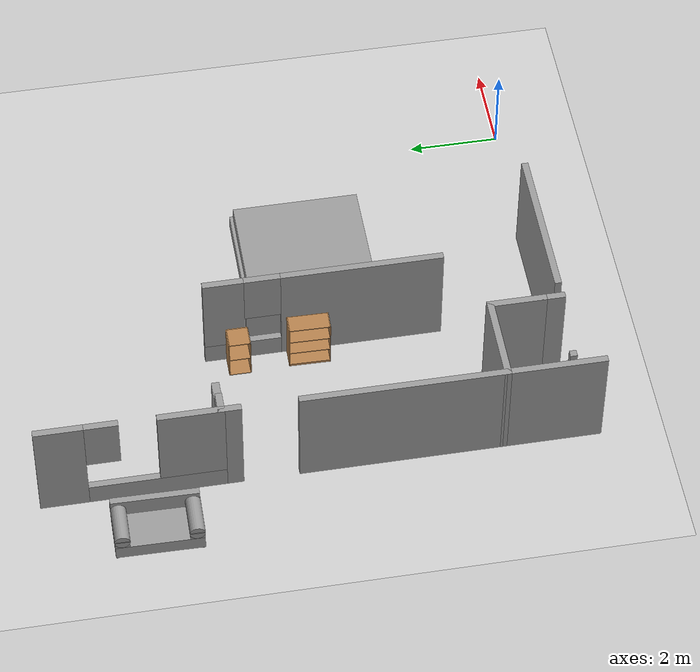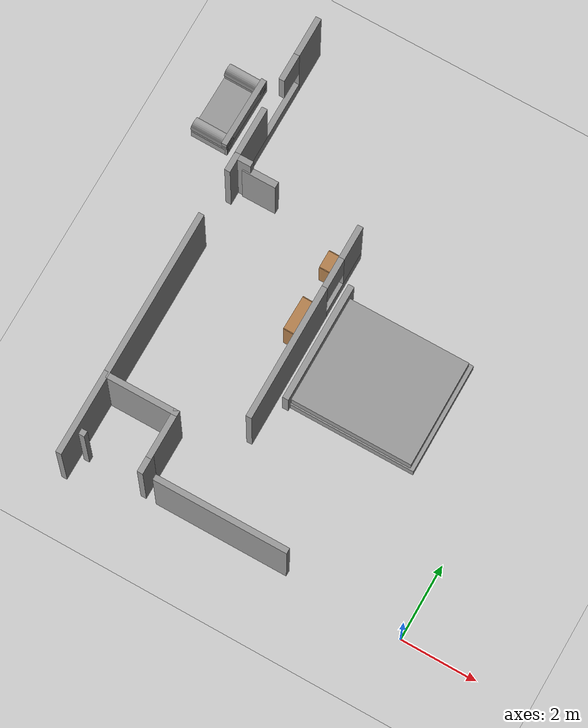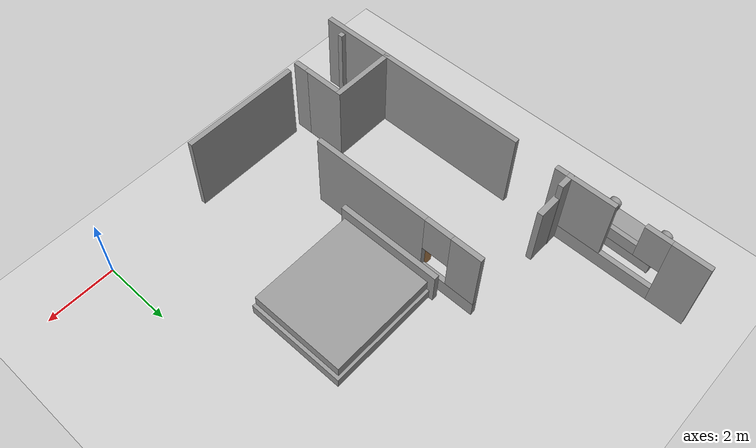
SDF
<sdf version="1.6">
 <world name="default">
  <model name="ground_plane">
   <static>1</static>
   <link name="link">
    <collision name="collision">
     <geometry><plane><normal>0 0 1</normal><size>100 100</size></plane></geometry>
     <surface>
      <contact><collide_bitmask>65535</collide_bitmask></contact>
      <friction><ode><mu>100</mu><mu2>50</mu2></ode></friction>
     </surface>
    </collision>
    <visual name="visual">
     <cast_shadows>0</cast_shadows>
     <geometry><plane><normal>0 0 1</normal><size>100 100</size></plane></geometry>
     <material>
      <script><uri>file://media/materials/scripts/gazebo.material</uri><name>Gazebo/Grey</name></script>
     </material>
    </visual>
   </link>
  </model>
  <model name="spruce1st">
   <pose>-3.08285 0.81707 0 0 -0 0</pose>
   <link name="Door_0">
    <collision name="Door_0_Collision">
     <geometry><box><size>0.9 0.17 2</size></box></geometry>
     <pose>0 0 1 0 -0 0</pose>
    </collision>
    <visual name="Door_0_Visual">
     <pose>0 0 1 0 -0 0</pose>
     <geometry><box><size>0.9 0.17 2</size></box></geometry>
     <material>
      <script><uri>file://media/materials/scripts/gazebo.material</uri><name>Gazebo/Grey</name></script>
     </material>
    </visual>
    <pose>-4.99432 6.83024 0 0 -0 0</pose>
   </link>
   <link name="Wall_112">
    <collision name="Wall_112_Collision">
     <geometry><box><size>3.5 0.15 2.5</size></box></geometry>
     <pose>0 0 1.25 0 -0 0</pose>
    </collision>
    <visual name="Wall_112_Visual">
     <pose>0 0 1.25 0 -0 0</pose>
     <geometry><box><size>3.5 0.15 2.5</size></box></geometry>
     <material>
      <script><uri>file://media/materials/scripts/gazebo.material</uri><name>Gazebo/Grey</name></script>
      <ambient>1 1 1 1</ambient>
     </material>
     <meta><layer>0</layer></meta>
    </visual>
    <pose>-1.7137 -0.745301 0 0 -0 3.14159</pose>
   </link>
   <link name="Wall_14">
    <pose>-5.6471 8.7763 0 0 0 -1.5708</pose>
    <visual name="Wall_14_Visual_0">
     <pose>-1.47334 0 1.25 0 -0 0</pose>
     <geometry><box><size>1.05332 0.15 2.5</size></box></geometry>
     <material>
      <script><uri>file://media/materials/scripts/gazebo.material</uri><name>Gazebo/Grey</name></script>
      <ambient>1 1 1 1</ambient>
     </material>
     <meta><layer>0</layer></meta>
    </visual>
    <collision name="Wall_14_Collision_0">
     <geometry><box><size>1.05332 0.15 2.5</size></box></geometry>
     <pose>-1.47334 0 1.25 0 -0 0</pose>
    </collision>
    <visual name="Wall_14_Visual_1">
     <pose>0.526659 0 0.25 0 -0 0</pose>
     <geometry><box><size>2.94668 0.15 0.5</size></box></geometry>
     <material>
      <script><uri>file://media/materials/scripts/gazebo.material</uri><name>Gazebo/Grey</name></script>
      <ambient>1 1 1 1</ambient>
     </material>
     <meta><layer>0</layer></meta>
    </visual>
    <collision name="Wall_14_Collision_1">
     <geometry><box><size>2.94668 0.15 0.5</size></box></geometry>
     <pose>0.526659 0 0.25 0 -0 0</pose>
    </collision>
    <visual name="Wall_14_Visual_2">
     <pose>1.28976 0 1.5 0 -0 0</pose>
     <geometry><box><size>1.42048 0.15 2</size></box></geometry>
     <material>
      <script><uri>file://media/materials/scripts/gazebo.material</uri><name>Gazebo/Grey</name></script>
      <ambient>1 1 1 1</ambient>
     </material>
     <meta><layer>0</layer></meta>
    </visual>
    <collision name="Wall_14_Collision_2">
     <geometry><box><size>1.42048 0.15 2</size></box></geometry>
     <pose>1.28976 0 1.5 0 -0 0</pose>
    </collision>
    <visual name="Wall_14_Visual_3">
     <pose>-0.58358 0 1.9 0 -0 0</pose>
     <geometry><box><size>0.726205 0.15 1.2</size></box></geometry>
     <material>
      <script><uri>file://media/materials/scripts/gazebo.material</uri><name>Gazebo/Grey</name></script>
      <ambient>1 1 1 1</ambient>
     </material>
     <meta><layer>0</layer></meta>
    </visual>
    <collision name="Wall_14_Collision_3">
     <geometry><box><size>0.726205 0.15 1.2</size></box></geometry>
     <pose>-0.58358 0 1.9 0 -0 0</pose>
    </collision>
   </link>
   <link name="Wall_15">
    <collision name="Wall_15_Collision">
     <geometry><box><size>0.5 0.15 2.5</size></box></geometry>
     <pose>0 0 1.25 0 -0 0</pose>
    </collision>
    <visual name="Wall_15_Visual">
     <pose>0 0 1.25 0 -0 0</pose>
     <geometry><box><size>0.5 0.15 2.5</size></box></geometry>
     <material>
      <script><uri>file://media/materials/scripts/gazebo.material</uri><name>Gazebo/Grey</name></script>
      <ambient>1 1 1 1</ambient>
     </material>
     <meta><layer>0</layer></meta>
    </visual>
    <pose>-5.4721 6.8513 0 0 -0 0</pose>
   </link>
   <link name="Wall_17">
    <collision name="Wall_17_Collision">
     <geometry><box><size>0.5 0.15 2.5</size></box></geometry>
     <pose>0 0 1.25 0 -0 0</pose>
    </collision>
    <visual name="Wall_17_Visual">
     <pose>0 0 1.25 0 -0 0</pose>
     <geometry><box><size>0.5 0.15 2.5</size></box></geometry>
     <material>
      <script><uri>file://media/materials/scripts/gazebo.material</uri><name>Gazebo/Grey</name></script>
      <ambient>1 1 1 1</ambient>
     </material>
     <meta><layer>0</layer></meta>
    </visual>
    <pose>-5.6471 6.6763 0 0 0 -1.5708</pose>
   </link>
   <link name="Wall_20">
    <collision name="Wall_20_Collision">
     <geometry><box><size>4.5 0.15 2.5</size></box></geometry>
     <pose>0 0 1.25 0 -0 0</pose>
    </collision>
    <visual name="Wall_20_Visual">
     <pose>0 0 1.25 0 -0 0</pose>
     <geometry><box><size>4.5 0.15 2.5</size></box></geometry>
     <material>
      <script><uri>file://media/materials/scripts/gazebo.material</uri><name>Gazebo/Grey</name></script>
      <ambient>1 1 1 1</ambient>
     </material>
     <meta><layer>0</layer></meta>
    </visual>
    <pose>-5.6471 2.9763 0 0 0 -1.5708</pose>
   </link>
   <link name="Wall_22">
    <collision name="Wall_22_Collision">
     <geometry><box><size>2 0.15 2.5</size></box></geometry>
     <pose>0 0 1.25 0 -0 0</pose>
    </collision>
    <visual name="Wall_22_Visual">
     <pose>0 0 1.25 0 -0 0</pose>
     <geometry><box><size>2 0.15 2.5</size></box></geometry>
     <material>
      <script><uri>file://media/materials/scripts/gazebo.material</uri><name>Gazebo/Grey</name></script>
      <ambient>1 1 1 1</ambient>
     </material>
     <meta><layer>0</layer></meta>
    </visual>
    <pose>-4.7221 0.801304 0 0 -0 0</pose>
   </link>
   <link name="Wall_23">
    <collision name="Wall_23_Collision">
     <geometry><box><size>1.30061 0.15 2.5</size></box></geometry>
     <pose>0 0 1.25 0 -0 0</pose>
    </collision>
    <visual name="Wall_23_Visual">
     <pose>0 0 1.25 0 -0 0</pose>
     <geometry><box><size>1.30061 0.15 2.5</size></box></geometry>
     <material>
      <script><uri>file://media/materials/scripts/gazebo.material</uri><name>Gazebo/Grey</name></script>
      <ambient>1 1 1 1</ambient>
     </material>
     <meta><layer>0</layer></meta>
    </visual>
    <pose>-3.7971 0.225996 0 0 0 -1.5708</pose>
   </link>
   <link name="Wall_24">
    <collision name="Wall_24_Collision">
     <geometry><box><size>0.5 0.15 2.5</size></box></geometry>
     <pose>0 0 1.25 0 -0 0</pose>
    </collision>
    <visual name="Wall_24_Visual">
     <pose>0 0 1.25 0 -0 0</pose>
     <geometry><box><size>0.5 0.15 2.5</size></box></geometry>
     <material>
      <script><uri>file://media/materials/scripts/gazebo.material</uri><name>Gazebo/Grey</name></script>
      <ambient>1 1 1 1</ambient>
     </material>
     <meta><layer>0</layer></meta>
    </visual>
    <pose>-3.7971 -0.574925 0 0 0 -1.5708</pose>
   </link>
   <link name="Wall_26">
    <collision name="Wall_26_Collision">
     <geometry><box><size>0.15 0.15 2.5</size></box></geometry>
     <pose>0 0 1.25 0 -0 0</pose>
    </collision>
    <visual name="Wall_26_Visual">
     <pose>0 0 1.25 0 -0 0</pose>
     <geometry><box><size>0.15 0.15 2.5</size></box></geometry>
     <material>
      <script><uri>file://media/materials/scripts/gazebo.material</uri><name>Gazebo/Grey</name></script>
      <ambient>1 1 1 1</ambient>
     </material>
     <meta><layer>0</layer></meta>
    </visual>
    <pose>-5.3971 -0.648696 0 0 -0 0</pose>
   </link>
   <link name="Wall_27">
    <collision name="Wall_27_Collision">
     <geometry><box><size>0.15 0.15 2.5</size></box></geometry>
     <pose>0 0 1.25 0 -0 0</pose>
    </collision>
    <visual name="Wall_27_Visual">
     <pose>0 0 1.25 0 -0 0</pose>
     <geometry><box><size>0.15 0.15 2.5</size></box></geometry>
     <material>
      <script><uri>file://media/materials/scripts/gazebo.material</uri><name>Gazebo/Grey</name></script>
      <ambient>1 1 1 1</ambient>
     </material>
     <meta><layer>0</layer></meta>
    </visual>
    <pose>-5.3971 -0.648696 0 0 -0 0</pose>
   </link>
   <link name="Wall_32">
    <collision name="Wall_32_Collision">
     <geometry><box><size>2.2153 0.15 2.5</size></box></geometry>
     <pose>0 0 1.25 0 -0 0</pose>
    </collision>
    <visual name="Wall_32_Visual">
     <pose>0 0 1.25 0 -0 0</pose>
     <geometry><box><size>2.2153 0.15 2.5</size></box></geometry>
     <material>
      <script><uri>file://media/materials/scripts/gazebo.material</uri><name>Gazebo/Grey</name></script>
      <ambient>1 1 1 1</ambient>
     </material>
     <meta><layer>0</layer></meta>
    </visual>
    <pose>-5.64642 -0.231348 0 0 -0 1.57145</pose>
   </link>
   <link name="Wall_63">
    <pose>-2.2887 4.1547 0 0 -0 1.5708</pose>
    <visual name="Wall_63_Visual_0">
     <pose>-0.8467 0 1.25 0 -0 0</pose>
     <geometry><box><size>3.5566 0.15 2.5</size></box></geometry>
     <material>
      <script><uri>file://media/materials/scripts/gazebo.material</uri><name>Gazebo/Grey</name></script>
      <ambient>1 1 1 1</ambient>
     </material>
     <meta><layer>0</layer></meta>
    </visual>
    <collision name="Wall_63_Collision_0">
     <geometry><box><size>3.5566 0.15 2.5</size></box></geometry>
     <pose>-0.8467 0 1.25 0 -0 0</pose>
    </collision>
    <visual name="Wall_63_Visual_1">
     <pose>1.7783 0 0.25 0 -0 0</pose>
     <geometry><box><size>1.6934 0.15 0.5</size></box></geometry>
     <material>
      <script><uri>file://media/materials/scripts/gazebo.material</uri><name>Gazebo/Grey</name></script>
      <ambient>1 1 1 1</ambient>
     </material>
     <meta><layer>0</layer></meta>
    </visual>
    <collision name="Wall_63_Collision_1">
     <geometry><box><size>1.6934 0.15 0.5</size></box></geometry>
     <pose>1.7783 0 0.25 0 -0 0</pose>
    </collision>
    <visual name="Wall_63_Visual_2">
     <pose>2.1783 0 1.5 0 -0 0</pose>
     <geometry><box><size>0.8934 0.15 2</size></box></geometry>
     <material>
      <script><uri>file://media/materials/scripts/gazebo.material</uri><name>Gazebo/Grey</name></script>
      <ambient>1 1 1 1</ambient>
     </material>
     <meta><layer>0</layer></meta>
    </visual>
    <collision name="Wall_63_Collision_2">
     <geometry><box><size>0.8934 0.15 2</size></box></geometry>
     <pose>2.1783 0 1.5 0 -0 0</pose>
    </collision>
    <visual name="Wall_63_Visual_3">
     <pose>1.3316 0 1.9 0 -0 0</pose>
     <geometry><box><size>0.8 0.15 1.2</size></box></geometry>
     <material>
      <script><uri>file://media/materials/scripts/gazebo.material</uri><name>Gazebo/Grey</name></script>
      <ambient>1 1 1 1</ambient>
     </material>
     <meta><layer>0</layer></meta>
    </visual>
    <collision name="Wall_63_Collision_3">
     <geometry><box><size>0.8 0.15 1.2</size></box></geometry>
     <pose>1.3316 0 1.9 0 -0 0</pose>
    </collision>
   </link>
   <static>1</static>
  </model>
  <model name="bedtry1">
   <link name="link_1">
    <pose>-1.11426 0.018994 0.114995 0 -0 0</pose>
    <inertial>
     <mass>0.506131</mass>
     <inertia>
      <ixx>0.462337</ixx>
      <ixy>0</ixy>
      <ixz>0</ixz>
      <iyy>0.0441055</iyy>
      <iyz>0</iyz>
      <izz>0.420361</izz>
     </inertia>
    </inertial>
    <visual name="visual">
     <geometry><box><size>0.158906 3.15297 1.01018</size></box></geometry>
     <material>
      <lighting>1</lighting>
      <script><uri>file://media/materials/scripts/gazebo.material</uri><name>Gazebo/Grey</name></script>
      <shader type="pixel"><normal_map>__default__</normal_map></shader>
      <ambient>0.3 0.3 0.3 1</ambient>
      <diffuse>0.7 0.7 0.7 1</diffuse>
      <specular>0.01 0.01 0.01 1</specular>
      <emissive>0 0 0 1</emissive>
     </material>
    </visual>
    <collision name="collision">
     <geometry><box><size>0.158906 3.15297 1.01018</size></box></geometry>
     <surface>
      <friction>
       <ode><mu>1</mu><mu2>1</mu2><fdir1>0 0 0</fdir1><slip1>0</slip1><slip2>0</slip2></ode>
       <torsional>
        <coefficient>1</coefficient>
        <patch_radius>0</patch_radius>
        <surface_radius>0</surface_radius>
        <use_patch_radius>1</use_patch_radius>
        <ode><slip>0</slip></ode>
       </torsional>
      </friction>
      <bounce><restitution_coefficient>0</restitution_coefficient><threshold>1e+06</threshold></bounce>
      <contact>
       <collide_without_contact>0</collide_without_contact>
       <collide_without_contact_bitmask>1</collide_without_contact_bitmask>
       <collide_bitmask>1</collide_bitmask>
       <ode>
        <soft_cfm>0</soft_cfm>
        <soft_erp>0.2</soft_erp>
        <kp>1e+13</kp>
        <kd>1</kd>
        <max_vel>0.01</max_vel>
        <min_depth>0</min_depth>
       </ode>
       <bullet>
        <split_impulse>1</split_impulse>
        <split_impulse_penetration_threshold>-0.01</split_impulse_penetration_threshold>
        <soft_cfm>0</soft_cfm>
        <soft_erp>0.2</soft_erp>
        <kp>1e+13</kp>
        <kd>1</kd>
       </bullet>
      </contact>
     </surface>
    </collision>
   </link>
   <link name="link_2">
    <pose>0.540571 0.000416 -0.229697 0 -0 0</pose>
    <inertial>
     <mass>3.41387</mass>
     <inertia><ixx>2.48377</ixx><ixy>0</ixy><ixz>0</ixz><iyy>3.45159</iyy><iyz>0</iyz><izz>5.87135</izz></inertia>
    </inertial>
    <visual name="visual">
     <geometry><box><size>3.46699 2.93567 0.335414</size></box></geometry>
     <material>
      <lighting>1</lighting>
      <script><uri>file://media/materials/scripts/gazebo.material</uri><name>Gazebo/Grey</name></script>
      <shader type="pixel"><normal_map>__default__</normal_map></shader>
      <ambient>0.3 0.3 0.3 1</ambient>
      <diffuse>0.7 0.7 0.7 1</diffuse>
      <specular>0.01 0.01 0.01 1</specular>
      <emissive>0 0 0 1</emissive>
     </material>
    </visual>
    <collision name="collision">
     <geometry><box><size>3.46699 2.93567 0.335414</size></box></geometry>
     <surface>
      <friction>
       <ode><mu>1</mu><mu2>1</mu2><fdir1>0 0 0</fdir1><slip1>0</slip1><slip2>0</slip2></ode>
       <torsional>
        <coefficient>1</coefficient>
        <patch_radius>0</patch_radius>
        <surface_radius>0</surface_radius>
        <use_patch_radius>1</use_patch_radius>
        <ode><slip>0</slip></ode>
       </torsional>
      </friction>
      <bounce><restitution_coefficient>0</restitution_coefficient><threshold>1e+06</threshold></bounce>
      <contact>
       <collide_without_contact>0</collide_without_contact>
       <collide_without_contact_bitmask>1</collide_without_contact_bitmask>
       <collide_bitmask>1</collide_bitmask>
       <ode>
        <soft_cfm>0</soft_cfm>
        <soft_erp>0.2</soft_erp>
        <kp>1e+13</kp>
        <kd>1</kd>
        <max_vel>0.01</max_vel>
        <min_depth>0</min_depth>
       </ode>
       <bullet>
        <split_impulse>1</split_impulse>
        <split_impulse_penetration_threshold>-0.01</split_impulse_penetration_threshold>
        <soft_cfm>0</soft_cfm>
        <soft_erp>0.2</soft_erp>
        <kp>1e+13</kp>
        <kd>1</kd>
       </bullet>
      </contact>
     </surface>
    </collision>
   </link>
   <link name="link_3">
    <pose>0.573695 -0.01941 0.114702 0 -0 0</pose>
    <inertial>
     <mass>3.04536</mass>
     <inertia><ixx>2.05172</ixx><ixy>0</ixy><ixz>0</ixz><iyy>2.63138</iyy><iyz>0</iyz><izz>4.62552</izz></inertia>
    </inertial>
    <visual name="visual">
     <geometry><box><size>3.20239 2.82333 0.336824</size></box></geometry>
     <material>
      <lighting>1</lighting>
      <script><uri>file://media/materials/scripts/gazebo.material</uri><name>Gazebo/Grey</name></script>
      <shader type="pixel"/>
      <ambient>0.3 0.3 0.3 1</ambient>
      <diffuse>0.7 0.7 0.7 1</diffuse>
      <specular>0.01 0.01 0.01 1</specular>
      <emissive>0 0 0 1</emissive>
     </material>
    </visual>
    <collision name="collision">
     <geometry><box><size>3.20239 2.82333 0.336824</size></box></geometry>
     <surface>
      <friction>
       <ode><mu>1</mu><mu2>1</mu2><fdir1>0 0 0</fdir1><slip1>0</slip1><slip2>0</slip2></ode>
       <torsional>
        <coefficient>1</coefficient>
        <patch_radius>0</patch_radius>
        <surface_radius>0</surface_radius>
        <use_patch_radius>1</use_patch_radius>
        <ode><slip>0</slip></ode>
       </torsional>
      </friction>
      <bounce><restitution_coefficient>0</restitution_coefficient><threshold>1e+06</threshold></bounce>
      <contact>
       <collide_without_contact>0</collide_without_contact>
       <collide_without_contact_bitmask>1</collide_without_contact_bitmask>
       <collide_bitmask>1</collide_bitmask>
       <ode>
        <soft_cfm>0</soft_cfm>
        <soft_erp>0.2</soft_erp>
        <kp>1e+13</kp>
        <kd>1</kd>
        <max_vel>0.01</max_vel>
        <min_depth>0</min_depth>
       </ode>
       <bullet>
        <split_impulse>1</split_impulse>
        <split_impulse_penetration_threshold>-0.01</split_impulse_penetration_threshold>
        <soft_cfm>0</soft_cfm>
        <soft_erp>0.2</soft_erp>
        <kp>1e+13</kp>
        <kd>1</kd>
       </bullet>
      </contact>
     </surface>
    </collision>
   </link>
   <joint name="link_1_JOINT_2" type="fixed">
    <parent>link_1</parent>
    <child>link_3</child>
    <physics>
     <ode><limit><cfm>0</cfm><erp>0.2</erp></limit><suspension><cfm>0</cfm><erp>0.2</erp></suspension></ode>
    </physics>
   </joint>
   <joint name="link_2_JOINT_0" type="fixed">
    <parent>link_2</parent>
    <child>link_1</child>
    <physics>
     <ode><limit><cfm>0</cfm><erp>0.2</erp></limit><suspension><cfm>0</cfm><erp>0.2</erp></suspension></ode>
    </physics>
   </joint>
   <joint name="link_3_JOINT_1" type="fixed">
    <parent>link_3</parent>
    <child>link_2</child>
    <physics>
     <ode><limit><cfm>0</cfm><erp>0.2</erp></limit><suspension><cfm>0</cfm><erp>0.2</erp></suspension></ode>
    </physics>
   </joint>
   <static>0</static>
   <pose>-3.92331 5.03308 0.397404 0 -0 0</pose>
  </model>
  <model name="cabinet">
   <static>1</static>
   <link name="cabinet_bottom_plate">
    <inertial>
     <pose>0 0 -1 0 -0 0</pose>
     <inertia><ixx>2.05</ixx><ixy>0</ixy><ixz>0</ixz><iyy>2.05</iyy><iyz>0</iyz><izz>2.05</izz></inertia>
     <mass>25</mass>
    </inertial>
    <collision name="cabinet_bottom_plate_geom">
     <pose>0 0 0.01 0 -0 0</pose>
     <geometry><box><size>0.45 0.45 0.02</size></box></geometry>
    </collision>
    <visual name="cabinet_bottom_plate_geom_visual">
     <pose>0 0 0.01 0 -0 0</pose>
     <geometry><box><size>0.45 0.45 0.02</size></box></geometry>
     <material>
      <script><uri>file://media/materials/scripts/gazebo.material</uri><name>Gazebo/Wood</name></script>
     </material>
    </visual>
    <collision name="cabinet_bottom_plate_geom_cabinet_back_plate">
     <pose>0.235 0 0.51 0 -0 0</pose>
     <geometry><box><size>0.02 0.45 1.02</size></box></geometry>
    </collision>
    <visual name="cabinet_bottom_plate_geom_cabinet_back_plate_visual">
     <pose>0.235 0 0.51 0 -0 0</pose>
     <geometry><box><size>0.02 0.45 1.02</size></box></geometry>
     <material>
      <script><uri>file://media/materials/scripts/gazebo.material</uri><name>Gazebo/Wood</name></script>
     </material>
    </visual>
    <collision name="cabinet_bottom_plate_geom_cabinet_left_plate">
     <pose>0 0.235 0.51 0 -0 0</pose>
     <geometry><box><size>0.45 0.02 1.02</size></box></geometry>
    </collision>
    <visual name="cabinet_bottom_plate_geom_cabinet_left_plate_visual">
     <pose>0 0.235 0.51 0 -0 0</pose>
     <geometry><box><size>0.45 0.02 1.02</size></box></geometry>
     <material>
      <script><uri>file://media/materials/scripts/gazebo.material</uri><name>Gazebo/Wood</name></script>
     </material>
    </visual>
    <collision name="cabinet_bottom_plate_geom_cabinet_middle_plate">
     <pose>0 0 0.51 0 -0 0</pose>
     <geometry><box><size>0.45 0.45 0.02</size></box></geometry>
    </collision>
    <visual name="cabinet_bottom_plate_geom_cabinet_middle_plate_visual">
     <pose>0 0 0.51 0 -0 0</pose>
     <geometry><box><size>0.45 0.45 0.02</size></box></geometry>
     <material>
      <script><uri>file://media/materials/scripts/gazebo.material</uri><name>Gazebo/Wood</name></script>
     </material>
    </visual>
    <collision name="cabinet_bottom_plate_geom_cabinet_right_plate">
     <pose>0 -0.235 0.51 0 -0 0</pose>
     <geometry><box><size>0.45 0.02 1.02</size></box></geometry>
    </collision>
    <visual name="cabinet_bottom_plate_geom_cabinet_right_plate_visual">
     <pose>0 -0.235 0.51 0 -0 0</pose>
     <geometry><box><size>0.45 0.02 1.02</size></box></geometry>
     <material>
      <script><uri>file://media/materials/scripts/gazebo.material</uri><name>Gazebo/Wood</name></script>
     </material>
    </visual>
    <collision name="cabinet_bottom_plate_geom_cabinet_top_plate">
     <pose>0 0 1.01 0 -0 0</pose>
     <geometry><box><size>0.45 0.45 0.02</size></box></geometry>
    </collision>
    <visual name="cabinet_bottom_plate_geom_cabinet_top_plate_visual">
     <pose>0 0 1.01 0 -0 0</pose>
     <geometry><box><size>0.45 0.45 0.02</size></box></geometry>
     <material>
      <script><uri>file://media/materials/scripts/gazebo.material</uri><name>Gazebo/Wood</name></script>
     </material>
    </visual>
   </link>
   <pose>-5.69297 6.88744 0 0 -0 0</pose>
  </model>
  <model name="bookshelf">
   <static>1</static>
   <link name="link">
    <inertial><mass>1</mass></inertial>
    <collision name="back">
     <pose>0 0.005 0.6 0 -0 0</pose>
     <geometry><box><size>0.9 0.01 1.2</size></box></geometry>
    </collision>
    <visual name="visual1">
     <pose>0 0.005 0.6 0 -0 0</pose>
     <geometry><box><size>0.9 0.01 1.2</size></box></geometry>
     <material>
      <script><uri>file://media/materials/scripts/gazebo.material</uri><name>Gazebo/Wood</name></script>
     </material>
    </visual>
    <collision name="left_side">
     <pose>0.45 -0.195 0.6 0 -0 0</pose>
     <geometry><box><size>0.02 0.4 1.2</size></box></geometry>
    </collision>
    <visual name="visual2">
     <pose>0.45 -0.195 0.6 0 -0 0</pose>
     <geometry><box><size>0.02 0.4 1.2</size></box></geometry>
     <material>
      <script><uri>file://media/materials/scripts/gazebo.material</uri><name>Gazebo/Wood</name></script>
     </material>
    </visual>
    <collision name="right_side">
     <pose>-0.45 -0.195 0.6 0 -0 0</pose>
     <geometry><box><size>0.02 0.4 1.2</size></box></geometry>
    </collision>
    <visual name="visual3">
     <pose>-0.45 -0.195 0.6 0 -0 0</pose>
     <geometry><box><size>0.02 0.4 1.2</size></box></geometry>
     <material>
      <script><uri>file://media/materials/scripts/gazebo.material</uri><name>Gazebo/Wood</name></script>
     </material>
    </visual>
    <collision name="bottom">
     <pose>0 -0.195 0.03 0 -0 0</pose>
     <geometry><box><size>0.88 0.4 0.06</size></box></geometry>
    </collision>
    <visual name="visual4">
     <pose>0 -0.195 0.03 0 -0 0</pose>
     <geometry><box><size>0.88 0.4 0.06</size></box></geometry>
     <material>
      <script><uri>file://media/materials/scripts/gazebo.material</uri><name>Gazebo/Wood</name></script>
     </material>
    </visual>
    <collision name="top">
     <pose>0 -0.195 1.19 0 -0 0</pose>
     <geometry><box><size>0.88 0.4 0.02</size></box></geometry>
    </collision>
    <visual name="visual5">
     <pose>0 -0.195 1.19 0 -0 0</pose>
     <geometry><box><size>0.88 0.4 0.02</size></box></geometry>
     <material>
      <script><uri>file://media/materials/scripts/gazebo.material</uri><name>Gazebo/Wood</name></script>
     </material>
    </visual>
    <collision name="low_shelf">
     <pose>0 -0.195 0.43 0 -0 0</pose>
     <geometry><box><size>0.88 0.4 0.02</size></box></geometry>
    </collision>
    <visual name="visual6">
     <pose>0 -0.195 0.43 0 -0 0</pose>
     <geometry><box><size>0.88 0.4 0.02</size></box></geometry>
     <material>
      <script><uri>file://media/materials/scripts/gazebo.material</uri><name>Gazebo/Wood</name></script>
     </material>
    </visual>
    <collision name="high_shelf">
     <pose>0 -0.195 0.8 0 -0 0</pose>
     <geometry><box><size>0.88 0.4 0.02</size></box></geometry>
    </collision>
    <visual name="visual7">
     <pose>0 -0.195 0.8 0 -0 0</pose>
     <geometry><box><size>0.88 0.4 0.02</size></box></geometry>
     <material>
      <script><uri>file://media/materials/scripts/gazebo.material</uri><name>Gazebo/Wood</name></script>
     </material>
    </visual>
   </link>
   <pose>-5.48843 5.33433 0 0 0 -1.58791</pose>
  </model>
  <model name="couch2.0_1">
   <link name="link_0">
    <pose>0 0.042624 -0.025032 0 -0 0</pose>
    <inertial>
     <mass>0.629351</mass>
     <inertia>
      <ixx>0.0582683</ixx>
      <ixy>0</ixy>
      <ixz>0</ixz>
      <iyy>0.192922</iyy>
      <iyz>0</iyz>
      <izz>0.239546</izz>
     </inertia>
    </inertial>
    <visual name="visual">
     <geometry><box><size>1.88878 1 0.33319</size></box></geometry>
     <material>
      <lighting>1</lighting>
      <script><uri>file://media/materials/scripts/gazebo.material</uri><name>Gazebo/Grey</name></script>
      <shader type="pixel"><normal_map>__default__</normal_map></shader>
      <ambient>0.3 0.3 0.3 1</ambient>
      <diffuse>0.7 0.7 0.7 1</diffuse>
      <specular>0.01 0.01 0.01 1</specular>
      <emissive>0 0 0 1</emissive>
     </material>
    </visual>
    <collision name="collision">
     <geometry><box><size>1.88878 1 0.33319</size></box></geometry>
     <surface>
      <friction>
       <ode><mu>1</mu><mu2>1</mu2><fdir1>0 0 0</fdir1><slip1>0</slip1><slip2>0</slip2></ode>
       <torsional>
        <coefficient>1</coefficient>
        <patch_radius>0</patch_radius>
        <surface_radius>0</surface_radius>
        <use_patch_radius>1</use_patch_radius>
        <ode><slip>0</slip></ode>
       </torsional>
      </friction>
      <bounce><restitution_coefficient>0</restitution_coefficient><threshold>1e+06</threshold></bounce>
      <contact>
       <collide_without_contact>0</collide_without_contact>
       <collide_without_contact_bitmask>1</collide_without_contact_bitmask>
       <collide_bitmask>1</collide_bitmask>
       <ode>
        <soft_cfm>0</soft_cfm>
        <soft_erp>0.2</soft_erp>
        <kp>1e+13</kp>
        <kd>1</kd>
        <max_vel>0.01</max_vel>
        <min_depth>0</min_depth>
       </ode>
       <bullet>
        <split_impulse>1</split_impulse>
        <split_impulse_penetration_threshold>-0.01</split_impulse_penetration_threshold>
        <soft_cfm>0</soft_cfm>
        <soft_erp>0.2</soft_erp>
        <kp>1e+13</kp>
        <kd>1</kd>
       </bullet>
      </contact>
     </surface>
    </collision>
   </link>
   <link name="link_0_clone">
    <pose>0 -0.383981 0.182545 0 -0 0</pose>
    <inertial>
     <mass>0.207466</mass>
     <inertia>
      <ixx>0.0100546</ixx>
      <ixy>0</ixy>
      <ixz>0</ixz>
      <iyy>0.0713599</iyy>
      <iyz>0</iyz>
      <izz>0.0620503</izz>
     </inertia>
    </inertial>
    <visual name="visual">
     <geometry><box><size>1.88878 0.146789 0.748345</size></box></geometry>
     <material>
      <lighting>1</lighting>
      <script><uri>file://media/materials/scripts/gazebo.material</uri><name>Gazebo/Grey</name></script>
      <shader type="pixel"><normal_map>__default__</normal_map></shader>
      <ambient>0.3 0.3 0.3 1</ambient>
      <diffuse>0.7 0.7 0.7 1</diffuse>
      <specular>0.01 0.01 0.01 1</specular>
      <emissive>0 0 0 1</emissive>
     </material>
    </visual>
    <collision name="collision">
     <geometry><box><size>1.88878 0.146789 0.748345</size></box></geometry>
     <surface>
      <friction>
       <ode><mu>1</mu><mu2>1</mu2><fdir1>0 0 0</fdir1><slip1>0</slip1><slip2>0</slip2></ode>
       <torsional>
        <coefficient>1</coefficient>
        <patch_radius>0</patch_radius>
        <surface_radius>0</surface_radius>
        <use_patch_radius>1</use_patch_radius>
        <ode><slip>0</slip></ode>
       </torsional>
      </friction>
      <bounce><restitution_coefficient>0</restitution_coefficient><threshold>1e+06</threshold></bounce>
      <contact>
       <collide_without_contact>0</collide_without_contact>
       <collide_without_contact_bitmask>1</collide_without_contact_bitmask>
       <collide_bitmask>1</collide_bitmask>
       <ode>
        <soft_cfm>0</soft_cfm>
        <soft_erp>0.2</soft_erp>
        <kp>1e+13</kp>
        <kd>1</kd>
        <max_vel>0.01</max_vel>
        <min_depth>0</min_depth>
       </ode>
       <bullet>
        <split_impulse>1</split_impulse>
        <split_impulse_penetration_threshold>-0.01</split_impulse_penetration_threshold>
        <soft_cfm>0</soft_cfm>
        <soft_erp>0.2</soft_erp>
        <kp>1e+13</kp>
        <kd>1</kd>
       </bullet>
      </contact>
     </surface>
    </collision>
   </link>
   <link name="link_1">
    <pose>-0.909335 -0.422322 -0.235214 0 -0 0</pose>
    <inertial>
     <mass>0.000500743</mass>
     <inertia>
      <ixx>5.85623e-07</ixx>
      <ixy>0</ixy>
      <ixz>0</ixz>
      <iyy>5.85623e-07</iyy>
      <iyz>0</iyz>
      <izz>3.07643e-07</izz>
     </inertia>
    </inertial>
    <visual name="visual">
     <geometry><cylinder><radius>0.0350535</radius><length>0.101724</length></cylinder></geometry>
     <material>
      <lighting>1</lighting>
      <script><uri>file://media/materials/scripts/gazebo.material</uri><name>Gazebo/Grey</name></script>
      <shader type="pixel"/>
      <ambient>0.3 0.3 0.3 1</ambient>
      <diffuse>0.7 0.7 0.7 1</diffuse>
      <specular>0.01 0.01 0.01 1</specular>
      <emissive>0 0 0 1</emissive>
     </material>
    </visual>
    <collision name="collision">
     <geometry><cylinder><radius>0.035053</radius><length>0.101724</length></cylinder></geometry>
     <surface>
      <friction>
       <ode><mu>1</mu><mu2>1</mu2><fdir1>0 0 0</fdir1><slip1>0</slip1><slip2>0</slip2></ode>
       <torsional>
        <coefficient>1</coefficient>
        <patch_radius>0</patch_radius>
        <surface_radius>0</surface_radius>
        <use_patch_radius>1</use_patch_radius>
        <ode><slip>0</slip></ode>
       </torsional>
      </friction>
      <bounce><restitution_coefficient>0</restitution_coefficient><threshold>1e+06</threshold></bounce>
      <contact>
       <collide_without_contact>0</collide_without_contact>
       <collide_without_contact_bitmask>1</collide_without_contact_bitmask>
       <collide_bitmask>1</collide_bitmask>
       <ode>
        <soft_cfm>0</soft_cfm>
        <soft_erp>0.2</soft_erp>
        <kp>1e+13</kp>
        <kd>1</kd>
        <max_vel>0.01</max_vel>
        <min_depth>0</min_depth>
       </ode>
       <bullet>
        <split_impulse>1</split_impulse>
        <split_impulse_penetration_threshold>-0.01</split_impulse_penetration_threshold>
        <soft_cfm>0</soft_cfm>
        <soft_erp>0.2</soft_erp>
        <kp>1e+13</kp>
        <kd>1</kd>
       </bullet>
      </contact>
     </surface>
    </collision>
   </link>
   <link name="link_1_clone">
    <pose>-0.909335 0.507571 -0.235214 0 -0 0</pose>
    <inertial>
     <mass>0.000500743</mass>
     <inertia>
      <ixx>5.85623e-07</ixx>
      <ixy>0</ixy>
      <ixz>0</ixz>
      <iyy>5.85623e-07</iyy>
      <iyz>0</iyz>
      <izz>3.07643e-07</izz>
     </inertia>
    </inertial>
    <visual name="visual">
     <geometry><cylinder><radius>0.0350535</radius><length>0.101724</length></cylinder></geometry>
     <material>
      <lighting>1</lighting>
      <script><uri>file://media/materials/scripts/gazebo.material</uri><name>Gazebo/Grey</name></script>
      <shader type="pixel"/>
      <ambient>0.3 0.3 0.3 1</ambient>
      <diffuse>0.7 0.7 0.7 1</diffuse>
      <specular>0.01 0.01 0.01 1</specular>
      <emissive>0 0 0 1</emissive>
     </material>
    </visual>
    <collision name="collision">
     <geometry><cylinder><radius>0.035053</radius><length>0.101724</length></cylinder></geometry>
     <surface>
      <friction>
       <ode><mu>1</mu><mu2>1</mu2><fdir1>0 0 0</fdir1><slip1>0</slip1><slip2>0</slip2></ode>
       <torsional>
        <coefficient>1</coefficient>
        <patch_radius>0</patch_radius>
        <surface_radius>0</surface_radius>
        <use_patch_radius>1</use_patch_radius>
        <ode><slip>0</slip></ode>
       </torsional>
      </friction>
      <bounce><restitution_coefficient>0</restitution_coefficient><threshold>1e+06</threshold></bounce>
      <contact>
       <collide_without_contact>0</collide_without_contact>
       <collide_without_contact_bitmask>1</collide_without_contact_bitmask>
       <collide_bitmask>1</collide_bitmask>
       <ode>
        <soft_cfm>0</soft_cfm>
        <soft_erp>0.2</soft_erp>
        <kp>1e+13</kp>
        <kd>1</kd>
        <max_vel>0.01</max_vel>
        <min_depth>0</min_depth>
       </ode>
       <bullet>
        <split_impulse>1</split_impulse>
        <split_impulse_penetration_threshold>-0.01</split_impulse_penetration_threshold>
        <soft_cfm>0</soft_cfm>
        <soft_erp>0.2</soft_erp>
        <kp>1e+13</kp>
        <kd>1</kd>
       </bullet>
      </contact>
     </surface>
    </collision>
   </link>
   <link name="link_1_clone_0">
    <pose>0.909335 -0.422322 -0.235214 0 -0 0</pose>
    <inertial>
     <mass>0.000500743</mass>
     <inertia>
      <ixx>5.85623e-07</ixx>
      <ixy>0</ixy>
      <ixz>0</ixz>
      <iyy>5.85623e-07</iyy>
      <iyz>0</iyz>
      <izz>3.07643e-07</izz>
     </inertia>
    </inertial>
    <visual name="visual">
     <geometry><cylinder><radius>0.0350535</radius><length>0.101724</length></cylinder></geometry>
     <material>
      <lighting>1</lighting>
      <script><uri>file://media/materials/scripts/gazebo.material</uri><name>Gazebo/Grey</name></script>
      <shader type="pixel"/>
      <ambient>0.3 0.3 0.3 1</ambient>
      <diffuse>0.7 0.7 0.7 1</diffuse>
      <specular>0.01 0.01 0.01 1</specular>
      <emissive>0 0 0 1</emissive>
     </material>
    </visual>
    <collision name="collision">
     <geometry><cylinder><radius>0.035053</radius><length>0.101724</length></cylinder></geometry>
     <surface>
      <friction>
       <ode><mu>1</mu><mu2>1</mu2><fdir1>0 0 0</fdir1><slip1>0</slip1><slip2>0</slip2></ode>
       <torsional>
        <coefficient>1</coefficient>
        <patch_radius>0</patch_radius>
        <surface_radius>0</surface_radius>
        <use_patch_radius>1</use_patch_radius>
        <ode><slip>0</slip></ode>
       </torsional>
      </friction>
      <bounce><restitution_coefficient>0</restitution_coefficient><threshold>1e+06</threshold></bounce>
      <contact>
       <collide_without_contact>0</collide_without_contact>
       <collide_without_contact_bitmask>1</collide_without_contact_bitmask>
       <collide_bitmask>1</collide_bitmask>
       <ode>
        <soft_cfm>0</soft_cfm>
        <soft_erp>0.2</soft_erp>
        <kp>1e+13</kp>
        <kd>1</kd>
        <max_vel>0.01</max_vel>
        <min_depth>0</min_depth>
       </ode>
       <bullet>
        <split_impulse>1</split_impulse>
        <split_impulse_penetration_threshold>-0.01</split_impulse_penetration_threshold>
        <soft_cfm>0</soft_cfm>
        <soft_erp>0.2</soft_erp>
        <kp>1e+13</kp>
        <kd>1</kd>
       </bullet>
      </contact>
     </surface>
    </collision>
   </link>
   <link name="link_1_clone_1">
    <pose>0.909335 0.507571 -0.235214 0 -0 0</pose>
    <inertial>
     <mass>0.000500743</mass>
     <inertia>
      <ixx>5.85623e-07</ixx>
      <ixy>0</ixy>
      <ixz>0</ixz>
      <iyy>5.85623e-07</iyy>
      <iyz>0</iyz>
      <izz>3.07643e-07</izz>
     </inertia>
    </inertial>
    <visual name="visual">
     <geometry><cylinder><radius>0.0350535</radius><length>0.101724</length></cylinder></geometry>
     <material>
      <lighting>1</lighting>
      <script><uri>file://media/materials/scripts/gazebo.material</uri><name>Gazebo/Grey</name></script>
      <shader type="pixel"/>
      <ambient>0.3 0.3 0.3 1</ambient>
      <diffuse>0.7 0.7 0.7 1</diffuse>
      <specular>0.01 0.01 0.01 1</specular>
      <emissive>0 0 0 1</emissive>
     </material>
    </visual>
    <collision name="collision">
     <geometry><cylinder><radius>0.035053</radius><length>0.101724</length></cylinder></geometry>
     <surface>
      <friction>
       <ode><mu>1</mu><mu2>1</mu2><fdir1>0 0 0</fdir1><slip1>0</slip1><slip2>0</slip2></ode>
       <torsional>
        <coefficient>1</coefficient>
        <patch_radius>0</patch_radius>
        <surface_radius>0</surface_radius>
        <use_patch_radius>1</use_patch_radius>
        <ode><slip>0</slip></ode>
       </torsional>
      </friction>
      <bounce><restitution_coefficient>0</restitution_coefficient><threshold>1e+06</threshold></bounce>
      <contact>
       <collide_without_contact>0</collide_without_contact>
       <collide_without_contact_bitmask>1</collide_without_contact_bitmask>
       <collide_bitmask>1</collide_bitmask>
       <ode>
        <soft_cfm>0</soft_cfm>
        <soft_erp>0.2</soft_erp>
        <kp>1e+13</kp>
        <kd>1</kd>
        <max_vel>0.01</max_vel>
        <min_depth>0</min_depth>
       </ode>
       <bullet>
        <split_impulse>1</split_impulse>
        <split_impulse_penetration_threshold>-0.01</split_impulse_penetration_threshold>
        <soft_cfm>0</soft_cfm>
        <soft_erp>0.2</soft_erp>
        <kp>1e+13</kp>
        <kd>1</kd>
       </bullet>
      </contact>
     </surface>
    </collision>
   </link>
   <link name="link_3">
    <pose>-0.787536 0.042624 0.075794 0 -0 0</pose>
    <inertial>
     <mass>0.167781</mass>
     <inertia>
      <ixx>0.0179813</ixx>
      <ixy>0</ixy>
      <ixz>0</ixz>
      <iyy>0.0053755</iyy>
      <iyz>0</iyz>
      <izz>0.0153577</izz>
     </inertia>
    </inertial>
    <visual name="visual">
     <geometry><box><size>0.313705 1 0.534841</size></box></geometry>
     <material>
      <lighting>1</lighting>
      <script><uri>file://media/materials/scripts/gazebo.material</uri><name>Gazebo/Grey</name></script>
      <shader type="pixel"/>
      <ambient>0.3 0.3 0.3 1</ambient>
      <diffuse>0.7 0.7 0.7 1</diffuse>
      <specular>0.01 0.01 0.01 1</specular>
      <emissive>0 0 0 1</emissive>
     </material>
    </visual>
    <collision name="collision">
     <geometry><box><size>0.313705 1 0.534841</size></box></geometry>
     <surface>
      <friction>
       <ode><mu>1</mu><mu2>1</mu2><fdir1>0 0 0</fdir1><slip1>0</slip1><slip2>0</slip2></ode>
       <torsional>
        <coefficient>1</coefficient>
        <patch_radius>0</patch_radius>
        <surface_radius>0</surface_radius>
        <use_patch_radius>1</use_patch_radius>
        <ode><slip>0</slip></ode>
       </torsional>
      </friction>
      <bounce><restitution_coefficient>0</restitution_coefficient><threshold>1e+06</threshold></bounce>
      <contact>
       <collide_without_contact>0</collide_without_contact>
       <collide_without_contact_bitmask>1</collide_without_contact_bitmask>
       <collide_bitmask>1</collide_bitmask>
       <ode>
        <soft_cfm>0</soft_cfm>
        <soft_erp>0.2</soft_erp>
        <kp>1e+13</kp>
        <kd>1</kd>
        <max_vel>0.01</max_vel>
        <min_depth>0</min_depth>
       </ode>
       <bullet>
        <split_impulse>1</split_impulse>
        <split_impulse_penetration_threshold>-0.01</split_impulse_penetration_threshold>
        <soft_cfm>0</soft_cfm>
        <soft_erp>0.2</soft_erp>
        <kp>1e+13</kp>
        <kd>1</kd>
       </bullet>
      </contact>
     </surface>
    </collision>
   </link>
   <link name="link_3_clone">
    <pose>0.787536 0.042624 0.075794 0 -0 0</pose>
    <inertial>
     <mass>0.163893</mass>
     <inertia>
      <ixx>0.0173856</ixx>
      <ixy>0</ixy>
      <ixz>0</ixz>
      <iyy>0.00507196</iyy>
      <iyz>0</iyz>
      <izz>0.0150018</izz>
     </inertia>
    </inertial>
    <visual name="visual">
     <geometry><box><size>0.313705 1 0.522447</size></box></geometry>
     <material>
      <lighting>1</lighting>
      <script><uri>file://media/materials/scripts/gazebo.material</uri><name>Gazebo/Grey</name></script>
      <shader type="pixel"><normal_map>__default__</normal_map></shader>
      <ambient>0.3 0.3 0.3 1</ambient>
      <diffuse>0.7 0.7 0.7 1</diffuse>
      <specular>0.01 0.01 0.01 1</specular>
      <emissive>0 0 0 1</emissive>
     </material>
    </visual>
    <collision name="collision">
     <geometry><box><size>0.313705 1 0.522447</size></box></geometry>
     <surface>
      <friction>
       <ode><mu>1</mu><mu2>1</mu2><fdir1>0 0 0</fdir1><slip1>0</slip1><slip2>0</slip2></ode>
       <torsional>
        <coefficient>1</coefficient>
        <patch_radius>0</patch_radius>
        <surface_radius>0</surface_radius>
        <use_patch_radius>1</use_patch_radius>
        <ode><slip>0</slip></ode>
       </torsional>
      </friction>
      <bounce><restitution_coefficient>0</restitution_coefficient><threshold>1e+06</threshold></bounce>
      <contact>
       <collide_without_contact>0</collide_without_contact>
       <collide_without_contact_bitmask>1</collide_without_contact_bitmask>
       <collide_bitmask>1</collide_bitmask>
       <ode>
        <soft_cfm>0</soft_cfm>
        <soft_erp>0.2</soft_erp>
        <kp>1e+13</kp>
        <kd>1</kd>
        <max_vel>0.01</max_vel>
        <min_depth>0</min_depth>
       </ode>
       <bullet>
        <split_impulse>1</split_impulse>
        <split_impulse_penetration_threshold>-0.01</split_impulse_penetration_threshold>
        <soft_cfm>0</soft_cfm>
        <soft_erp>0.2</soft_erp>
        <kp>1e+13</kp>
        <kd>1</kd>
       </bullet>
      </contact>
     </surface>
    </collision>
   </link>
   <link name="link_4">
    <pose>0.787536 0.042624 0.315876 1.573 -0 0</pose>
    <inertial>
     <mass>0.110343</mass>
     <inertia>
      <ixx>0.00995618</ixx>
      <ixy>0</ixy>
      <ixz>0</ixz>
      <iyy>0.00995618</iyy>
      <iyz>0</iyz>
      <izz>0.00152191</izz>
     </inertia>
     <pose>0 0 0 0 1.51 0</pose>
    </inertial>
    <visual name="visual">
     <geometry><cylinder><radius>0.166088</radius><length>1</length></cylinder></geometry>
     <material>
      <lighting>1</lighting>
      <script><uri>file://media/materials/scripts/gazebo.material</uri><name>Gazebo/Grey</name></script>
      <shader type="pixel"><normal_map>__default__</normal_map></shader>
      <ambient>0.3 0.3 0.3 1</ambient>
      <diffuse>0.7 0.7 0.7 1</diffuse>
      <specular>0.01 0.01 0.01 1</specular>
      <emissive>0 0 0 1</emissive>
     </material>
    </visual>
    <collision name="collision">
     <geometry><cylinder><radius>0.166088</radius><length>1</length></cylinder></geometry>
     <surface>
      <friction>
       <ode><mu>1</mu><mu2>1</mu2><fdir1>0 0 0</fdir1><slip1>0</slip1><slip2>0</slip2></ode>
       <torsional>
        <coefficient>1</coefficient>
        <patch_radius>0</patch_radius>
        <surface_radius>0</surface_radius>
        <use_patch_radius>1</use_patch_radius>
        <ode><slip>0</slip></ode>
       </torsional>
      </friction>
      <bounce><restitution_coefficient>0</restitution_coefficient><threshold>1e+06</threshold></bounce>
      <contact>
       <collide_without_contact>0</collide_without_contact>
       <collide_without_contact_bitmask>1</collide_without_contact_bitmask>
       <collide_bitmask>1</collide_bitmask>
       <ode>
        <soft_cfm>0</soft_cfm>
        <soft_erp>0.2</soft_erp>
        <kp>1e+13</kp>
        <kd>1</kd>
        <max_vel>0.01</max_vel>
        <min_depth>0</min_depth>
       </ode>
       <bullet>
        <split_impulse>1</split_impulse>
        <split_impulse_penetration_threshold>-0.01</split_impulse_penetration_threshold>
        <soft_cfm>0</soft_cfm>
        <soft_erp>0.2</soft_erp>
        <kp>1e+13</kp>
        <kd>1</kd>
       </bullet>
      </contact>
     </surface>
    </collision>
   </link>
   <link name="link_4_clone">
    <pose>-0.787536 0.042624 0.315877 1.573 -0 0</pose>
    <inertial>
     <mass>0.110343</mass>
     <inertia>
      <ixx>0.00995618</ixx>
      <ixy>0</ixy>
      <ixz>0</ixz>
      <iyy>0.00995618</iyy>
      <iyz>0</iyz>
      <izz>0.00152191</izz>
     </inertia>
     <pose>0 0 0 0 1.51 0</pose>
    </inertial>
    <visual name="visual">
     <geometry><cylinder><radius>0.166088</radius><length>1</length></cylinder></geometry>
     <material>
      <lighting>1</lighting>
      <script><uri>file://media/materials/scripts/gazebo.material</uri><name>Gazebo/Grey</name></script>
      <shader type="pixel"><normal_map>__default__</normal_map></shader>
      <ambient>0.3 0.3 0.3 1</ambient>
      <diffuse>0.7 0.7 0.7 1</diffuse>
      <specular>0.01 0.01 0.01 1</specular>
      <emissive>0 0 0 1</emissive>
     </material>
    </visual>
    <collision name="collision">
     <geometry><cylinder><radius>0.166088</radius><length>1</length></cylinder></geometry>
     <surface>
      <friction>
       <ode><mu>1</mu><mu2>1</mu2><fdir1>0 0 0</fdir1><slip1>0</slip1><slip2>0</slip2></ode>
       <torsional>
        <coefficient>1</coefficient>
        <patch_radius>0</patch_radius>
        <surface_radius>0</surface_radius>
        <use_patch_radius>1</use_patch_radius>
        <ode><slip>0</slip></ode>
       </torsional>
      </friction>
      <bounce><restitution_coefficient>0</restitution_coefficient><threshold>1e+06</threshold></bounce>
      <contact>
       <collide_without_contact>0</collide_without_contact>
       <collide_without_contact_bitmask>1</collide_without_contact_bitmask>
       <collide_bitmask>1</collide_bitmask>
       <ode>
        <soft_cfm>0</soft_cfm>
        <soft_erp>0.2</soft_erp>
        <kp>1e+13</kp>
        <kd>1</kd>
        <max_vel>0.01</max_vel>
        <min_depth>0</min_depth>
       </ode>
       <bullet>
        <split_impulse>1</split_impulse>
        <split_impulse_penetration_threshold>-0.01</split_impulse_penetration_threshold>
        <soft_cfm>0</soft_cfm>
        <soft_erp>0.2</soft_erp>
        <kp>1e+13</kp>
        <kd>1</kd>
       </bullet>
      </contact>
     </surface>
    </collision>
   </link>
   <joint name="link_0_JOINT_0" type="fixed">
    <parent>link_0</parent>
    <child>link_1</child>
    <physics>
     <ode><limit><cfm>0</cfm><erp>0.2</erp></limit><suspension><cfm>0</cfm><erp>0.2</erp></suspension></ode>
    </physics>
   </joint>
   <joint name="link_0_JOINT_1" type="fixed">
    <parent>link_0</parent>
    <child>link_1_clone</child>
    <physics>
     <ode><limit><cfm>0</cfm><erp>0.2</erp></limit><suspension><cfm>0</cfm><erp>0.2</erp></suspension></ode>
    </physics>
   </joint>
   <joint name="link_0_JOINT_2" type="fixed">
    <parent>link_0</parent>
    <child>link_1_clone_0</child>
    <physics>
     <ode><limit><cfm>0</cfm><erp>0.2</erp></limit><suspension><cfm>0</cfm><erp>0.2</erp></suspension></ode>
    </physics>
   </joint>
   <joint name="link_0_JOINT_3" type="fixed">
    <parent>link_0</parent>
    <child>link_1_clone_1</child>
    <physics>
     <ode><limit><cfm>0</cfm><erp>0.2</erp></limit><suspension><cfm>0</cfm><erp>0.2</erp></suspension></ode>
    </physics>
   </joint>
   <joint name="link_0_JOINT_4" type="fixed">
    <parent>link_0</parent>
    <child>link_3</child>
    <physics>
     <ode><limit><cfm>0</cfm><erp>0.2</erp></limit><suspension><cfm>0</cfm><erp>0.2</erp></suspension></ode>
    </physics>
   </joint>
   <joint name="link_0_JOINT_5" type="fixed">
    <parent>link_0</parent>
    <child>link_3_clone</child>
    <physics>
     <ode><limit><cfm>0</cfm><erp>0.2</erp></limit><suspension><cfm>0</cfm><erp>0.2</erp></suspension></ode>
    </physics>
   </joint>
   <joint name="link_0_JOINT_9" type="fixed">
    <parent>link_0</parent>
    <child>link_0_clone</child>
    <physics>
     <ode><limit><cfm>0</cfm><erp>0.2</erp></limit><suspension><cfm>0</cfm><erp>0.2</erp></suspension></ode>
    </physics>
   </joint>
   <joint name="link_4_JOINT_7" type="fixed">
    <parent>link_4</parent>
    <child>link_3_clone</child>
    <physics>
     <ode><limit><cfm>0</cfm><erp>0.2</erp></limit><suspension><cfm>0</cfm><erp>0.2</erp></suspension></ode>
    </physics>
   </joint>
   <joint name="link_4_clone_JOINT_8" type="fixed">
    <parent>link_3</parent>
    <child>link_4_clone</child>
    <physics>
     <ode><limit><cfm>0</cfm><erp>0.2</erp></limit><suspension><cfm>0</cfm><erp>0.2</erp></suspension></ode>
    </physics>
   </joint>
   <static>0</static>
   <pose>-9.79983 9.2215 0.191632 1e-06 5e-06 1.55663</pose>
  </model>
 </world>
</sdf>
